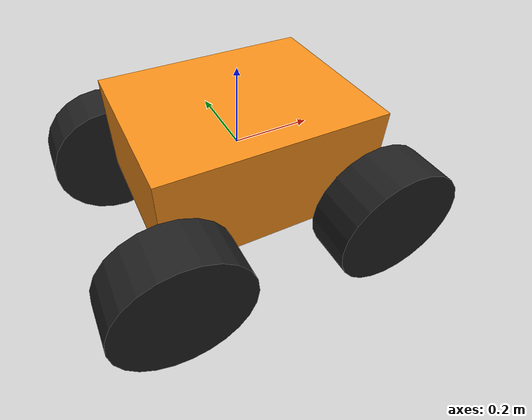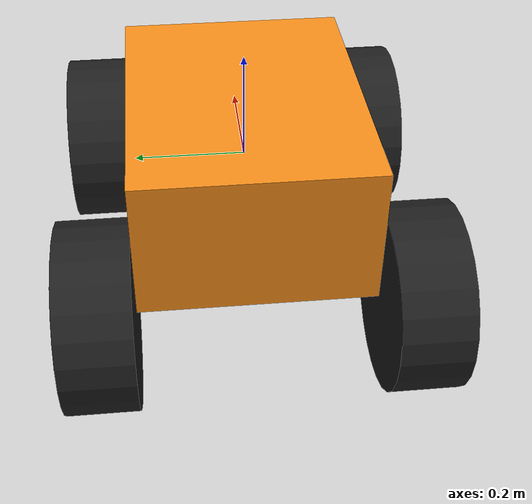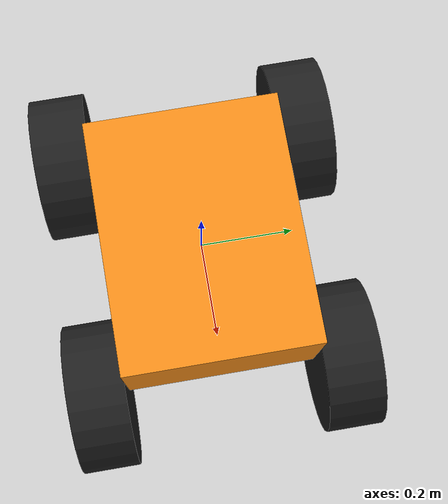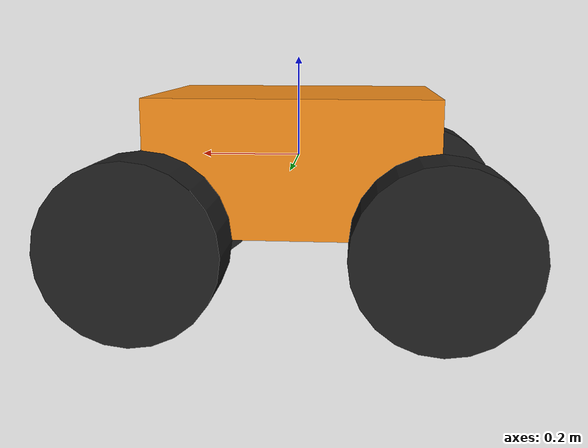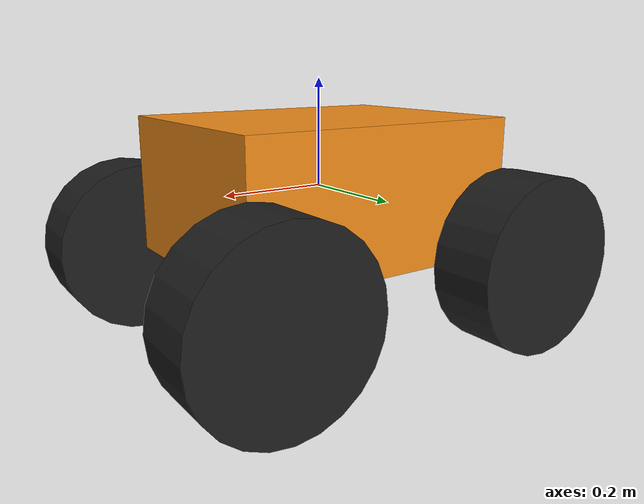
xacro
<?xml version="1.0" encoding="UTF-8"?>
<!-- A four wheel robot -->
<!--
    A four wheel mobile robot made for Tutorial 3 (for being spawned in gazebo)
-->
<robot name="fw_robot" xmlns:xacro="http://www.ros.org/wiki/xacro">
    <!-- Include other files -->
    <!-- Include the properties file -->
    <xacro:include filename="$(find basic_robotics)/urdf/fwb_parameters.xacro" />
    <!-- Include headers (XACRO macros) file  -->
    <xacro:include filename="$(find basic_robotics)/urdf/fwb_macros.xacro" />
    <!-- Include file for Gazebo -->
    <xacro:include filename="$(find basic_robotics)/urdf/fwb_t3.gazebo" />

    <!-- Main code -->
    <!-- Main body link -->
    <link name="body">
        <inertial>
            <origin xyz="0.0 0.0 0.0" rpy="0.0 0.0 0.0"/>
            <mass value="${body_m}"/>
            <xacro:inertia_cuboid m="${body_m}" sx="${body_sx}" sy="${body_sy}" sz="${body_sz}" />
        </inertial>
        <visual>
            <origin xyz="0.0 0.0 0.0" rpy="0.0 0.0 0.0"/>
            <geometry>
                <box size="${body_sx} ${body_sy} ${body_sz}"/>
            </geometry>
        </visual>
        <collition>
            <origin xyz="0.0 0.0 0.0" rpy="0.0 0.0 0.0"/>
            <geometry>
                <box size="${body_sx} ${body_sy} ${body_sz}"/>
            </geometry>
        </collition>
    </link>
    <!-- Attach the wheels -->
    <xacro:add_wheel lname="fl_wheel" jname="fl_wheel_joint"
        sx="${body_sx/2}" sy="${(body_sy + wheel_h)/2}" sz="${-body_sz/2}"
        m="${wheel_m}" r="${wheel_r}" h="${wheel_h}"/>  <!-- Front Left -->
    <xacro:add_wheel lname="fr_wheel" jname="fr_wheel_joint"
        sx="${body_sx/2}" sy="${-(body_sy + wheel_h)/2}" sz="${-body_sz/2}"
        m="${wheel_m}" r="${wheel_r}" h="${wheel_h}"/>  <!-- Front Right -->
    <xacro:add_wheel lname="hl_wheel" jname="hl_wheel_joint"
        sx="${-body_sx/2}" sy="${(body_sy + wheel_h)/2}" sz="${-body_sz/2}"
        m="${wheel_m}" r="${wheel_r}" h="${wheel_h}"/>  <!-- Hind Left -->
    <xacro:add_wheel lname="hr_wheel" jname="hr_wheel_joint"
        sx="${-body_sx/2}" sy="${-(body_sy + wheel_h)/2}" sz="${-body_sz/2}"
        m="${wheel_m}" r="${wheel_r}" h="${wheel_h}"/>  <!-- Hind Right -->
</robot>

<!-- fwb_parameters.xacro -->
<!-- This file contains parameters for the four wheel robot -->
<robot name="fw_robot" xmlns:xacro="http://www.ros.org/wiki/xacro" >
    <!-- Parameters for the robot body (cuboid) -->
    <xacro:property name="body_m" value="20" />    <!-- Mass (kg) -->
    <xacro:property name="body_sx" value="0.544" /> <!-- Side Length: X Axis (m) -->
    <xacro:property name="body_sy" value="0.420" /> <!-- Side Length: Y Axis (m) -->
    <xacro:property name="body_sz" value="0.260" /> <!-- Side Length: Z Axis (m) -->
    <!-- Parameters for robot wheels (cylinders) -->
    <xacro:property name="wheel_m" value="1" />  <!-- Mass (kg) -->
    <xacro:property name="wheel_r" value="0.165" /> <!-- Wheel radius (m) -->
    <xacro:property name="wheel_h" value="0.125" /> <!-- Wheel height (m) -->
</robot>

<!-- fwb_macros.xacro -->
<!-- This file contains different macros for four wheel robot -->
<robot name="fw_robot" xmlns:xacro="http://www.ros.org/wiki/xacro">

    <!-- List of 3D inertia tensors -->
    <!-- Link: https://en.wikipedia.org/wiki/List_of_moments_of_inertia#List_of_3D_inertia_tensors -->
    <!-- Inertia Matrix of a Cuboid -->
    <xacro:macro name="inertia_cuboid" params="m sx sy sz">
        <inertia ixx="${(1/12) * m * (sy ** 2 + sz ** 2)}" ixy="0.0" ixz="0.0"
                        iyy="${(1/12) * m * (sx ** 2 + sz ** 2)}" iyz="0.0"
                                izz="${(1/12) * m * (sy ** 2 + sx ** 2)}"/>
    </xacro:macro>
    <!-- Inertia Matrix of a Cube -->
    <xacro:macro name="inertia_cube" params="m sl">
        <xacro:inertia_cuboid m="${m}" sx="${sl}" sy="${sl}" sz="${sl}" />
    </xacro:macro>
    <!-- Inertia Matrix of a Cylinder -->
    <xacro:macro name="inertia_cylinder" params="m r h">
        <inertia ixx="${(1/12) * m * (3 * (r ** 2) + h ** 2)}" ixy="0.0" ixz="0.0"
                        iyy="${(1/12) * m * (3 * (r ** 2) + h ** 2)}" iyz="0.0"
                                izz="${(1/2) * m * (r ** 2)}"/>
    </xacro:macro>

    <!-- Macros for the program -->
    <!-- Insert an entire wheel -->
    <xacro:macro name="add_wheel" params="sx sy sz lname jname m r h">
        <!-- Link -->
        <link name="${lname}">
            <inertial>
                <origin xyz="0.0 0.0 0.0" rpy="0.0 0.0 0.0"/>
                <mass value="${m}"/>
                <xacro:inertia_cylinder m="${m}" r="${r}" h="${h}" />
            </inertial>
            <visual>
                <origin xyz="0.0 0.0 0.0" rpy="0.0 0.0 0.0"/>
                <geometry>
                    <cylinder radius="${r}" length="${h}"/>
                </geometry>
            </visual>
            <collision>
                <origin xyz="0.0 0.0 0.0" rpy="0.0 0.0 0.0"/>
                <geometry>
                    <cylinder radius="${r}" length="${h}"/>
                </geometry>
            </collision>
        </link>
        <!-- Joint from wheel to body -->
        <joint name="${jname}" type="continuous">
            <origin xyz="${sx} ${sy} ${sz}" rpy="${radians(-90)} 0.0 0.0"/>
            <parent link="body"/>
            <child link="${lname}"/>
            <axis xyz="0.0 0.0 1.0"/>
        </joint>
    </xacro:macro>
</robot>
